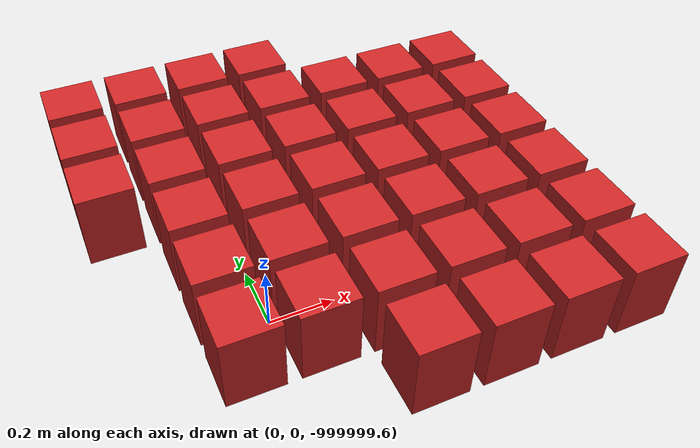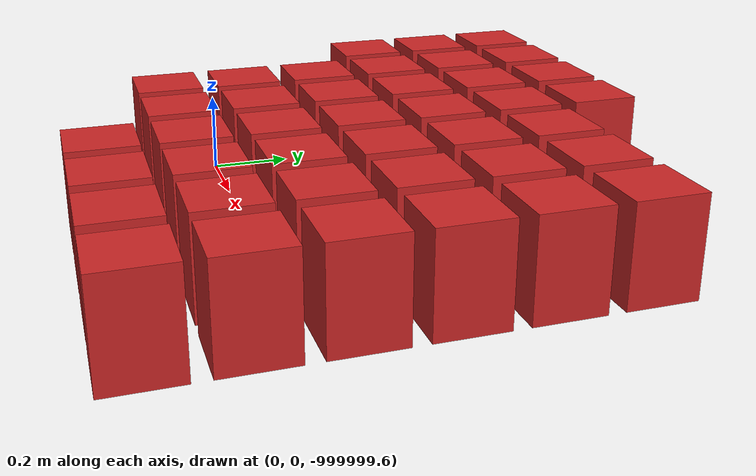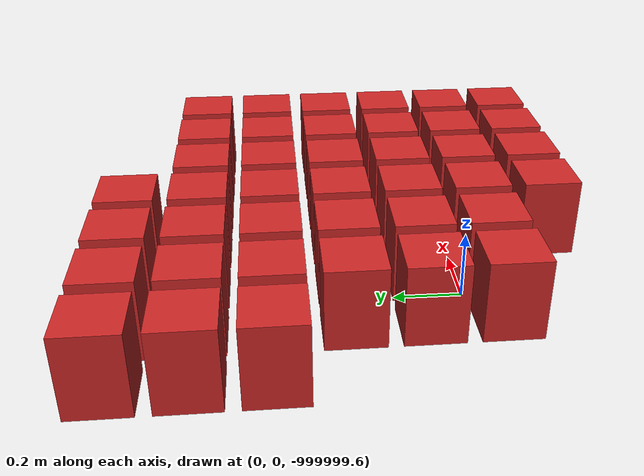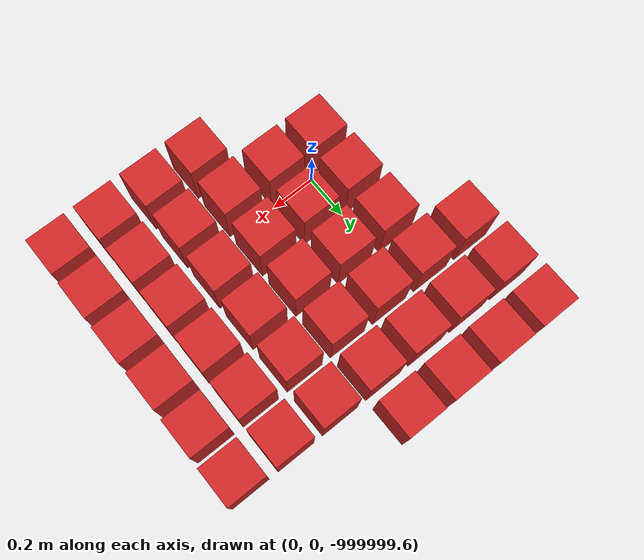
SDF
<sdf version="1.7">
 <world name="default">
  <model name="ground_plane">
   <static>1</static>
   <link name="link">
    <collision name="collision">
     <geometry><plane><normal>0 0 1</normal><size>100 100</size></plane></geometry>
     <surface>
      <contact><collide_bitmask>65535</collide_bitmask></contact>
      <friction><ode><mu>100</mu><mu2>50</mu2></ode></friction>
     </surface>
    </collision>
    <visual name="visual">
     <cast_shadows>0</cast_shadows>
     <geometry><plane><normal>0 0 1</normal><size>100 100</size></plane></geometry>
     <material>
      <script><uri>file://media/materials/scripts/gazebo.material</uri><name>Gazebo/Grey</name></script>
     </material>
    </visual>
   </link>
  </model>
  <model name="wall_243">
   <link name="link">
    <pose>0 0 0.5 0 -0 0</pose>
    <inertial>
     <mass>0.5167</mass>
     <inertia>
      <ixx>0.000861167</ixx>
      <ixy>0</ixy>
      <ixz>0</ixz>
      <iyy>0.000861167</iyy>
      <iyz>0</iyz>
      <izz>0.000861167</izz>
     </inertia>
    </inertial>
    <collision name="collision">
     <geometry><box><size>0.21 0.21 0.25</size></box></geometry>
     <surface>
      <contact>
       <poissons_ratio>0.347</poissons_ratio>
       <elastic_modulus>8.8e+09</elastic_modulus>
       <ode><kp>100000</kp><kd>100</kd><max_vel>100</max_vel><min_depth>0.001</min_depth></ode>
      </contact>
      <friction>
       <torsional>
        <coefficient>1</coefficient>
        <use_patch_radius>0</use_patch_radius>
        <surface_radius>0.01</surface_radius>
       </torsional>
      </friction>
     </surface>
    </collision>
    <visual name="visual">
     <geometry><box><size>0.175 0.175 0.25</size></box></geometry>
     <material>
      <script><uri>file://media/materials/scripts/gazebo.material</uri><name>Gazebo/Red</name></script>
     </material>
    </visual>
   </link>
   <pose>0.326087 -0.326087 -1e+06 0 -0 0</pose>
  </model>
  <model name="wall_244">
   <link name="link">
    <pose>0 0 0.5 0 -0 0</pose>
    <inertial>
     <mass>0.5167</mass>
     <inertia>
      <ixx>0.000861167</ixx>
      <ixy>0</ixy>
      <ixz>0</ixz>
      <iyy>0.000861167</iyy>
      <iyz>0</iyz>
      <izz>0.000861167</izz>
     </inertia>
    </inertial>
    <collision name="collision">
     <geometry><box><size>0.21 0.21 0.25</size></box></geometry>
     <surface>
      <contact>
       <poissons_ratio>0.347</poissons_ratio>
       <elastic_modulus>8.8e+09</elastic_modulus>
       <ode><kp>100000</kp><kd>100</kd><max_vel>100</max_vel><min_depth>0.001</min_depth></ode>
      </contact>
      <friction>
       <torsional>
        <coefficient>1</coefficient>
        <use_patch_radius>0</use_patch_radius>
        <surface_radius>0.01</surface_radius>
       </torsional>
      </friction>
     </surface>
    </collision>
    <visual name="visual">
     <geometry><box><size>0.175 0.175 0.25</size></box></geometry>
     <material>
      <script><uri>file://media/materials/scripts/gazebo.material</uri><name>Gazebo/Red</name></script>
     </material>
    </visual>
   </link>
   <pose>0.543478 -0.326087 -1e+06 0 -0 0</pose>
  </model>
  <model name="wall_245">
   <link name="link">
    <pose>0 0 0.5 0 -0 0</pose>
    <inertial>
     <mass>0.5167</mass>
     <inertia>
      <ixx>0.000861167</ixx>
      <ixy>0</ixy>
      <ixz>0</ixz>
      <iyy>0.000861167</iyy>
      <iyz>0</iyz>
      <izz>0.000861167</izz>
     </inertia>
    </inertial>
    <collision name="collision">
     <geometry><box><size>0.21 0.21 0.25</size></box></geometry>
     <surface>
      <contact>
       <poissons_ratio>0.347</poissons_ratio>
       <elastic_modulus>8.8e+09</elastic_modulus>
       <ode><kp>100000</kp><kd>100</kd><max_vel>100</max_vel><min_depth>0.001</min_depth></ode>
      </contact>
      <friction>
       <torsional>
        <coefficient>1</coefficient>
        <use_patch_radius>0</use_patch_radius>
        <surface_radius>0.01</surface_radius>
       </torsional>
      </friction>
     </surface>
    </collision>
    <visual name="visual">
     <geometry><box><size>0.175 0.175 0.25</size></box></geometry>
     <material>
      <script><uri>file://media/materials/scripts/gazebo.material</uri><name>Gazebo/Red</name></script>
     </material>
    </visual>
   </link>
   <pose>0.76087 -0.326087 -1e+06 0 -0 0</pose>
  </model>
  <model name="wall_246">
   <link name="link">
    <pose>0 0 0.5 0 -0 0</pose>
    <inertial>
     <mass>0.5167</mass>
     <inertia>
      <ixx>0.000861167</ixx>
      <ixy>0</ixy>
      <ixz>0</ixz>
      <iyy>0.000861167</iyy>
      <iyz>0</iyz>
      <izz>0.000861167</izz>
     </inertia>
    </inertial>
    <collision name="collision">
     <geometry><box><size>0.21 0.21 0.25</size></box></geometry>
     <surface>
      <contact>
       <poissons_ratio>0.347</poissons_ratio>
       <elastic_modulus>8.8e+09</elastic_modulus>
       <ode><kp>100000</kp><kd>100</kd><max_vel>100</max_vel><min_depth>0.001</min_depth></ode>
      </contact>
      <friction>
       <torsional>
        <coefficient>1</coefficient>
        <use_patch_radius>0</use_patch_radius>
        <surface_radius>0.01</surface_radius>
       </torsional>
      </friction>
     </surface>
    </collision>
    <visual name="visual">
     <geometry><box><size>0.175 0.175 0.25</size></box></geometry>
     <material>
      <script><uri>file://media/materials/scripts/gazebo.material</uri><name>Gazebo/Red</name></script>
     </material>
    </visual>
   </link>
   <pose>0.978261 -0.326087 -1e+06 0 -0 0</pose>
  </model>
  <model name="wall_264">
   <link name="link">
    <pose>0 0 0.5 0 -0 0</pose>
    <inertial>
     <mass>0.5167</mass>
     <inertia>
      <ixx>0.000861167</ixx>
      <ixy>0</ixy>
      <ixz>0</ixz>
      <iyy>0.000861167</iyy>
      <iyz>0</iyz>
      <izz>0.000861167</izz>
     </inertia>
    </inertial>
    <collision name="collision">
     <geometry><box><size>0.21 0.21 0.25</size></box></geometry>
     <surface>
      <contact>
       <poissons_ratio>0.347</poissons_ratio>
       <elastic_modulus>8.8e+09</elastic_modulus>
       <ode><kp>100000</kp><kd>100</kd><max_vel>100</max_vel><min_depth>0.001</min_depth></ode>
      </contact>
      <friction>
       <torsional>
        <coefficient>1</coefficient>
        <use_patch_radius>0</use_patch_radius>
        <surface_radius>0.01</surface_radius>
       </torsional>
      </friction>
     </surface>
    </collision>
    <visual name="visual">
     <geometry><box><size>0.175 0.175 0.25</size></box></geometry>
     <material>
      <script><uri>file://media/materials/scripts/gazebo.material</uri><name>Gazebo/Red</name></script>
     </material>
    </visual>
   </link>
   <pose>-0.108696 -0.108696 -1e+06 0 -0 0</pose>
  </model>
  <model name="wall_265">
   <link name="link">
    <pose>0 0 0.5 0 -0 0</pose>
    <inertial>
     <mass>0.5167</mass>
     <inertia>
      <ixx>0.000861167</ixx>
      <ixy>0</ixy>
      <ixz>0</ixz>
      <iyy>0.000861167</iyy>
      <iyz>0</iyz>
      <izz>0.000861167</izz>
     </inertia>
    </inertial>
    <collision name="collision">
     <geometry><box><size>0.21 0.21 0.25</size></box></geometry>
     <surface>
      <contact>
       <poissons_ratio>0.347</poissons_ratio>
       <elastic_modulus>8.8e+09</elastic_modulus>
       <ode><kp>100000</kp><kd>100</kd><max_vel>100</max_vel><min_depth>0.001</min_depth></ode>
      </contact>
      <friction>
       <torsional>
        <coefficient>1</coefficient>
        <use_patch_radius>0</use_patch_radius>
        <surface_radius>0.01</surface_radius>
       </torsional>
      </friction>
     </surface>
    </collision>
    <visual name="visual">
     <geometry><box><size>0.175 0.175 0.25</size></box></geometry>
     <material>
      <script><uri>file://media/materials/scripts/gazebo.material</uri><name>Gazebo/Red</name></script>
     </material>
    </visual>
   </link>
   <pose>0.108696 -0.108696 -1e+06 0 -0 0</pose>
  </model>
  <model name="wall_266">
   <link name="link">
    <pose>0 0 0.5 0 -0 0</pose>
    <inertial>
     <mass>0.5167</mass>
     <inertia>
      <ixx>0.000861167</ixx>
      <ixy>0</ixy>
      <ixz>0</ixz>
      <iyy>0.000861167</iyy>
      <iyz>0</iyz>
      <izz>0.000861167</izz>
     </inertia>
    </inertial>
    <collision name="collision">
     <geometry><box><size>0.21 0.21 0.25</size></box></geometry>
     <surface>
      <contact>
       <poissons_ratio>0.347</poissons_ratio>
       <elastic_modulus>8.8e+09</elastic_modulus>
       <ode><kp>100000</kp><kd>100</kd><max_vel>100</max_vel><min_depth>0.001</min_depth></ode>
      </contact>
      <friction>
       <torsional>
        <coefficient>1</coefficient>
        <use_patch_radius>0</use_patch_radius>
        <surface_radius>0.01</surface_radius>
       </torsional>
      </friction>
     </surface>
    </collision>
    <visual name="visual">
     <geometry><box><size>0.175 0.175 0.25</size></box></geometry>
     <material>
      <script><uri>file://media/materials/scripts/gazebo.material</uri><name>Gazebo/Red</name></script>
     </material>
    </visual>
   </link>
   <pose>0.326087 -0.108696 -1e+06 0 -0 0</pose>
  </model>
  <model name="wall_267">
   <link name="link">
    <pose>0 0 0.5 0 -0 0</pose>
    <inertial>
     <mass>0.5167</mass>
     <inertia>
      <ixx>0.000861167</ixx>
      <ixy>0</ixy>
      <ixz>0</ixz>
      <iyy>0.000861167</iyy>
      <iyz>0</iyz>
      <izz>0.000861167</izz>
     </inertia>
    </inertial>
    <collision name="collision">
     <geometry><box><size>0.21 0.21 0.25</size></box></geometry>
     <surface>
      <contact>
       <poissons_ratio>0.347</poissons_ratio>
       <elastic_modulus>8.8e+09</elastic_modulus>
       <ode><kp>100000</kp><kd>100</kd><max_vel>100</max_vel><min_depth>0.001</min_depth></ode>
      </contact>
      <friction>
       <torsional>
        <coefficient>1</coefficient>
        <use_patch_radius>0</use_patch_radius>
        <surface_radius>0.01</surface_radius>
       </torsional>
      </friction>
     </surface>
    </collision>
    <visual name="visual">
     <geometry><box><size>0.175 0.175 0.25</size></box></geometry>
     <material>
      <script><uri>file://media/materials/scripts/gazebo.material</uri><name>Gazebo/Red</name></script>
     </material>
    </visual>
   </link>
   <pose>0.543478 -0.108696 -1e+06 0 -0 0</pose>
  </model>
  <model name="wall_268">
   <link name="link">
    <pose>0 0 0.5 0 -0 0</pose>
    <inertial>
     <mass>0.5167</mass>
     <inertia>
      <ixx>0.000861167</ixx>
      <ixy>0</ixy>
      <ixz>0</ixz>
      <iyy>0.000861167</iyy>
      <iyz>0</iyz>
      <izz>0.000861167</izz>
     </inertia>
    </inertial>
    <collision name="collision">
     <geometry><box><size>0.21 0.21 0.25</size></box></geometry>
     <surface>
      <contact>
       <poissons_ratio>0.347</poissons_ratio>
       <elastic_modulus>8.8e+09</elastic_modulus>
       <ode><kp>100000</kp><kd>100</kd><max_vel>100</max_vel><min_depth>0.001</min_depth></ode>
      </contact>
      <friction>
       <torsional>
        <coefficient>1</coefficient>
        <use_patch_radius>0</use_patch_radius>
        <surface_radius>0.01</surface_radius>
       </torsional>
      </friction>
     </surface>
    </collision>
    <visual name="visual">
     <geometry><box><size>0.175 0.175 0.25</size></box></geometry>
     <material>
      <script><uri>file://media/materials/scripts/gazebo.material</uri><name>Gazebo/Red</name></script>
     </material>
    </visual>
   </link>
   <pose>0.76087 -0.108696 -1e+06 0 -0 0</pose>
  </model>
  <model name="wall_269">
   <link name="link">
    <pose>0 0 0.5 0 -0 0</pose>
    <inertial>
     <mass>0.5167</mass>
     <inertia>
      <ixx>0.000861167</ixx>
      <ixy>0</ixy>
      <ixz>0</ixz>
      <iyy>0.000861167</iyy>
      <iyz>0</iyz>
      <izz>0.000861167</izz>
     </inertia>
    </inertial>
    <collision name="collision">
     <geometry><box><size>0.21 0.21 0.25</size></box></geometry>
     <surface>
      <contact>
       <poissons_ratio>0.347</poissons_ratio>
       <elastic_modulus>8.8e+09</elastic_modulus>
       <ode><kp>100000</kp><kd>100</kd><max_vel>100</max_vel><min_depth>0.001</min_depth></ode>
      </contact>
      <friction>
       <torsional>
        <coefficient>1</coefficient>
        <use_patch_radius>0</use_patch_radius>
        <surface_radius>0.01</surface_radius>
       </torsional>
      </friction>
     </surface>
    </collision>
    <visual name="visual">
     <geometry><box><size>0.175 0.175 0.25</size></box></geometry>
     <material>
      <script><uri>file://media/materials/scripts/gazebo.material</uri><name>Gazebo/Red</name></script>
     </material>
    </visual>
   </link>
   <pose>0.978261 -0.108696 -1e+06 0 -0 0</pose>
  </model>
  <model name="wall_287">
   <link name="link">
    <pose>0 0 0.5 0 -0 0</pose>
    <inertial>
     <mass>0.5167</mass>
     <inertia>
      <ixx>0.000861167</ixx>
      <ixy>0</ixy>
      <ixz>0</ixz>
      <iyy>0.000861167</iyy>
      <iyz>0</iyz>
      <izz>0.000861167</izz>
     </inertia>
    </inertial>
    <collision name="collision">
     <geometry><box><size>0.21 0.21 0.25</size></box></geometry>
     <surface>
      <contact>
       <poissons_ratio>0.347</poissons_ratio>
       <elastic_modulus>8.8e+09</elastic_modulus>
       <ode><kp>100000</kp><kd>100</kd><max_vel>100</max_vel><min_depth>0.001</min_depth></ode>
      </contact>
      <friction>
       <torsional>
        <coefficient>1</coefficient>
        <use_patch_radius>0</use_patch_radius>
        <surface_radius>0.01</surface_radius>
       </torsional>
      </friction>
     </surface>
    </collision>
    <visual name="visual">
     <geometry><box><size>0.175 0.175 0.25</size></box></geometry>
     <material>
      <script><uri>file://media/materials/scripts/gazebo.material</uri><name>Gazebo/Red</name></script>
     </material>
    </visual>
   </link>
   <pose>-0.108696 0.108696 -1e+06 0 -0 0</pose>
  </model>
  <model name="wall_288">
   <link name="link">
    <pose>0 0 0.5 0 -0 0</pose>
    <inertial>
     <mass>0.5167</mass>
     <inertia>
      <ixx>0.000861167</ixx>
      <ixy>0</ixy>
      <ixz>0</ixz>
      <iyy>0.000861167</iyy>
      <iyz>0</iyz>
      <izz>0.000861167</izz>
     </inertia>
    </inertial>
    <collision name="collision">
     <geometry><box><size>0.21 0.21 0.25</size></box></geometry>
     <surface>
      <contact>
       <poissons_ratio>0.347</poissons_ratio>
       <elastic_modulus>8.8e+09</elastic_modulus>
       <ode><kp>100000</kp><kd>100</kd><max_vel>100</max_vel><min_depth>0.001</min_depth></ode>
      </contact>
      <friction>
       <torsional>
        <coefficient>1</coefficient>
        <use_patch_radius>0</use_patch_radius>
        <surface_radius>0.01</surface_radius>
       </torsional>
      </friction>
     </surface>
    </collision>
    <visual name="visual">
     <geometry><box><size>0.175 0.175 0.25</size></box></geometry>
     <material>
      <script><uri>file://media/materials/scripts/gazebo.material</uri><name>Gazebo/Red</name></script>
     </material>
    </visual>
   </link>
   <pose>0.108696 0.108696 -1e+06 0 -0 0</pose>
  </model>
  <model name="wall_289">
   <link name="link">
    <pose>0 0 0.5 0 -0 0</pose>
    <inertial>
     <mass>0.5167</mass>
     <inertia>
      <ixx>0.000861167</ixx>
      <ixy>0</ixy>
      <ixz>0</ixz>
      <iyy>0.000861167</iyy>
      <iyz>0</iyz>
      <izz>0.000861167</izz>
     </inertia>
    </inertial>
    <collision name="collision">
     <geometry><box><size>0.21 0.21 0.25</size></box></geometry>
     <surface>
      <contact>
       <poissons_ratio>0.347</poissons_ratio>
       <elastic_modulus>8.8e+09</elastic_modulus>
       <ode><kp>100000</kp><kd>100</kd><max_vel>100</max_vel><min_depth>0.001</min_depth></ode>
      </contact>
      <friction>
       <torsional>
        <coefficient>1</coefficient>
        <use_patch_radius>0</use_patch_radius>
        <surface_radius>0.01</surface_radius>
       </torsional>
      </friction>
     </surface>
    </collision>
    <visual name="visual">
     <geometry><box><size>0.175 0.175 0.25</size></box></geometry>
     <material>
      <script><uri>file://media/materials/scripts/gazebo.material</uri><name>Gazebo/Red</name></script>
     </material>
    </visual>
   </link>
   <pose>0.326087 0.108696 -1e+06 0 -0 0</pose>
  </model>
  <model name="wall_290">
   <link name="link">
    <pose>0 0 0.5 0 -0 0</pose>
    <inertial>
     <mass>0.5167</mass>
     <inertia>
      <ixx>0.000861167</ixx>
      <ixy>0</ixy>
      <ixz>0</ixz>
      <iyy>0.000861167</iyy>
      <iyz>0</iyz>
      <izz>0.000861167</izz>
     </inertia>
    </inertial>
    <collision name="collision">
     <geometry><box><size>0.21 0.21 0.25</size></box></geometry>
     <surface>
      <contact>
       <poissons_ratio>0.347</poissons_ratio>
       <elastic_modulus>8.8e+09</elastic_modulus>
       <ode><kp>100000</kp><kd>100</kd><max_vel>100</max_vel><min_depth>0.001</min_depth></ode>
      </contact>
      <friction>
       <torsional>
        <coefficient>1</coefficient>
        <use_patch_radius>0</use_patch_radius>
        <surface_radius>0.01</surface_radius>
       </torsional>
      </friction>
     </surface>
    </collision>
    <visual name="visual">
     <geometry><box><size>0.175 0.175 0.25</size></box></geometry>
     <material>
      <script><uri>file://media/materials/scripts/gazebo.material</uri><name>Gazebo/Red</name></script>
     </material>
    </visual>
   </link>
   <pose>0.543478 0.108696 -1e+06 0 -0 0</pose>
  </model>
  <model name="wall_291">
   <link name="link">
    <pose>0 0 0.5 0 -0 0</pose>
    <inertial>
     <mass>0.5167</mass>
     <inertia>
      <ixx>0.000861167</ixx>
      <ixy>0</ixy>
      <ixz>0</ixz>
      <iyy>0.000861167</iyy>
      <iyz>0</iyz>
      <izz>0.000861167</izz>
     </inertia>
    </inertial>
    <collision name="collision">
     <geometry><box><size>0.21 0.21 0.25</size></box></geometry>
     <surface>
      <contact>
       <poissons_ratio>0.347</poissons_ratio>
       <elastic_modulus>8.8e+09</elastic_modulus>
       <ode><kp>100000</kp><kd>100</kd><max_vel>100</max_vel><min_depth>0.001</min_depth></ode>
      </contact>
      <friction>
       <torsional>
        <coefficient>1</coefficient>
        <use_patch_radius>0</use_patch_radius>
        <surface_radius>0.01</surface_radius>
       </torsional>
      </friction>
     </surface>
    </collision>
    <visual name="visual">
     <geometry><box><size>0.175 0.175 0.25</size></box></geometry>
     <material>
      <script><uri>file://media/materials/scripts/gazebo.material</uri><name>Gazebo/Red</name></script>
     </material>
    </visual>
   </link>
   <pose>0.76087 0.108696 -1e+06 0 -0 0</pose>
  </model>
  <model name="wall_292">
   <link name="link">
    <pose>0 0 0.5 0 -0 0</pose>
    <inertial>
     <mass>0.5167</mass>
     <inertia>
      <ixx>0.000861167</ixx>
      <ixy>0</ixy>
      <ixz>0</ixz>
      <iyy>0.000861167</iyy>
      <iyz>0</iyz>
      <izz>0.000861167</izz>
     </inertia>
    </inertial>
    <collision name="collision">
     <geometry><box><size>0.21 0.21 0.25</size></box></geometry>
     <surface>
      <contact>
       <poissons_ratio>0.347</poissons_ratio>
       <elastic_modulus>8.8e+09</elastic_modulus>
       <ode><kp>100000</kp><kd>100</kd><max_vel>100</max_vel><min_depth>0.001</min_depth></ode>
      </contact>
      <friction>
       <torsional>
        <coefficient>1</coefficient>
        <use_patch_radius>0</use_patch_radius>
        <surface_radius>0.01</surface_radius>
       </torsional>
      </friction>
     </surface>
    </collision>
    <visual name="visual">
     <geometry><box><size>0.175 0.175 0.25</size></box></geometry>
     <material>
      <script><uri>file://media/materials/scripts/gazebo.material</uri><name>Gazebo/Red</name></script>
     </material>
    </visual>
   </link>
   <pose>0.978261 0.108696 -1e+06 0 -0 0</pose>
  </model>
  <model name="wall_310">
   <link name="link">
    <pose>0 0 0.5 0 -0 0</pose>
    <inertial>
     <mass>0.5167</mass>
     <inertia>
      <ixx>0.000861167</ixx>
      <ixy>0</ixy>
      <ixz>0</ixz>
      <iyy>0.000861167</iyy>
      <iyz>0</iyz>
      <izz>0.000861167</izz>
     </inertia>
    </inertial>
    <collision name="collision">
     <geometry><box><size>0.21 0.21 0.25</size></box></geometry>
     <surface>
      <contact>
       <poissons_ratio>0.347</poissons_ratio>
       <elastic_modulus>8.8e+09</elastic_modulus>
       <ode><kp>100000</kp><kd>100</kd><max_vel>100</max_vel><min_depth>0.001</min_depth></ode>
      </contact>
      <friction>
       <torsional>
        <coefficient>1</coefficient>
        <use_patch_radius>0</use_patch_radius>
        <surface_radius>0.01</surface_radius>
       </torsional>
      </friction>
     </surface>
    </collision>
    <visual name="visual">
     <geometry><box><size>0.175 0.175 0.25</size></box></geometry>
     <material>
      <script><uri>file://media/materials/scripts/gazebo.material</uri><name>Gazebo/Red</name></script>
     </material>
    </visual>
   </link>
   <pose>-0.108696 0.326087 -1e+06 0 -0 0</pose>
  </model>
  <model name="wall_311">
   <link name="link">
    <pose>0 0 0.5 0 -0 0</pose>
    <inertial>
     <mass>0.5167</mass>
     <inertia>
      <ixx>0.000861167</ixx>
      <ixy>0</ixy>
      <ixz>0</ixz>
      <iyy>0.000861167</iyy>
      <iyz>0</iyz>
      <izz>0.000861167</izz>
     </inertia>
    </inertial>
    <collision name="collision">
     <geometry><box><size>0.21 0.21 0.25</size></box></geometry>
     <surface>
      <contact>
       <poissons_ratio>0.347</poissons_ratio>
       <elastic_modulus>8.8e+09</elastic_modulus>
       <ode><kp>100000</kp><kd>100</kd><max_vel>100</max_vel><min_depth>0.001</min_depth></ode>
      </contact>
      <friction>
       <torsional>
        <coefficient>1</coefficient>
        <use_patch_radius>0</use_patch_radius>
        <surface_radius>0.01</surface_radius>
       </torsional>
      </friction>
     </surface>
    </collision>
    <visual name="visual">
     <geometry><box><size>0.175 0.175 0.25</size></box></geometry>
     <material>
      <script><uri>file://media/materials/scripts/gazebo.material</uri><name>Gazebo/Red</name></script>
     </material>
    </visual>
   </link>
   <pose>0.108696 0.326087 -1e+06 0 -0 0</pose>
  </model>
  <model name="wall_312">
   <link name="link">
    <pose>0 0 0.5 0 -0 0</pose>
    <inertial>
     <mass>0.5167</mass>
     <inertia>
      <ixx>0.000861167</ixx>
      <ixy>0</ixy>
      <ixz>0</ixz>
      <iyy>0.000861167</iyy>
      <iyz>0</iyz>
      <izz>0.000861167</izz>
     </inertia>
    </inertial>
    <collision name="collision">
     <geometry><box><size>0.21 0.21 0.25</size></box></geometry>
     <surface>
      <contact>
       <poissons_ratio>0.347</poissons_ratio>
       <elastic_modulus>8.8e+09</elastic_modulus>
       <ode><kp>100000</kp><kd>100</kd><max_vel>100</max_vel><min_depth>0.001</min_depth></ode>
      </contact>
      <friction>
       <torsional>
        <coefficient>1</coefficient>
        <use_patch_radius>0</use_patch_radius>
        <surface_radius>0.01</surface_radius>
       </torsional>
      </friction>
     </surface>
    </collision>
    <visual name="visual">
     <geometry><box><size>0.175 0.175 0.25</size></box></geometry>
     <material>
      <script><uri>file://media/materials/scripts/gazebo.material</uri><name>Gazebo/Red</name></script>
     </material>
    </visual>
   </link>
   <pose>0.326087 0.326087 -1e+06 0 -0 0</pose>
  </model>
  <model name="wall_313">
   <link name="link">
    <pose>0 0 0.5 0 -0 0</pose>
    <inertial>
     <mass>0.5167</mass>
     <inertia>
      <ixx>0.000861167</ixx>
      <ixy>0</ixy>
      <ixz>0</ixz>
      <iyy>0.000861167</iyy>
      <iyz>0</iyz>
      <izz>0.000861167</izz>
     </inertia>
    </inertial>
    <collision name="collision">
     <geometry><box><size>0.21 0.21 0.25</size></box></geometry>
     <surface>
      <contact>
       <poissons_ratio>0.347</poissons_ratio>
       <elastic_modulus>8.8e+09</elastic_modulus>
       <ode><kp>100000</kp><kd>100</kd><max_vel>100</max_vel><min_depth>0.001</min_depth></ode>
      </contact>
      <friction>
       <torsional>
        <coefficient>1</coefficient>
        <use_patch_radius>0</use_patch_radius>
        <surface_radius>0.01</surface_radius>
       </torsional>
      </friction>
     </surface>
    </collision>
    <visual name="visual">
     <geometry><box><size>0.175 0.175 0.25</size></box></geometry>
     <material>
      <script><uri>file://media/materials/scripts/gazebo.material</uri><name>Gazebo/Red</name></script>
     </material>
    </visual>
   </link>
   <pose>0.543478 0.326087 -1e+06 0 -0 0</pose>
  </model>
  <model name="wall_314">
   <link name="link">
    <pose>0 0 0.5 0 -0 0</pose>
    <inertial>
     <mass>0.5167</mass>
     <inertia>
      <ixx>0.000861167</ixx>
      <ixy>0</ixy>
      <ixz>0</ixz>
      <iyy>0.000861167</iyy>
      <iyz>0</iyz>
      <izz>0.000861167</izz>
     </inertia>
    </inertial>
    <collision name="collision">
     <geometry><box><size>0.21 0.21 0.25</size></box></geometry>
     <surface>
      <contact>
       <poissons_ratio>0.347</poissons_ratio>
       <elastic_modulus>8.8e+09</elastic_modulus>
       <ode><kp>100000</kp><kd>100</kd><max_vel>100</max_vel><min_depth>0.001</min_depth></ode>
      </contact>
      <friction>
       <torsional>
        <coefficient>1</coefficient>
        <use_patch_radius>0</use_patch_radius>
        <surface_radius>0.01</surface_radius>
       </torsional>
      </friction>
     </surface>
    </collision>
    <visual name="visual">
     <geometry><box><size>0.175 0.175 0.25</size></box></geometry>
     <material>
      <script><uri>file://media/materials/scripts/gazebo.material</uri><name>Gazebo/Red</name></script>
     </material>
    </visual>
   </link>
   <pose>0.76087 0.326087 -1e+06 0 -0 0</pose>
  </model>
  <model name="wall_315">
   <link name="link">
    <pose>0 0 0.5 0 -0 0</pose>
    <inertial>
     <mass>0.5167</mass>
     <inertia>
      <ixx>0.000861167</ixx>
      <ixy>0</ixy>
      <ixz>0</ixz>
      <iyy>0.000861167</iyy>
      <iyz>0</iyz>
      <izz>0.000861167</izz>
     </inertia>
    </inertial>
    <collision name="collision">
     <geometry><box><size>0.21 0.21 0.25</size></box></geometry>
     <surface>
      <contact>
       <poissons_ratio>0.347</poissons_ratio>
       <elastic_modulus>8.8e+09</elastic_modulus>
       <ode><kp>100000</kp><kd>100</kd><max_vel>100</max_vel><min_depth>0.001</min_depth></ode>
      </contact>
      <friction>
       <torsional>
        <coefficient>1</coefficient>
        <use_patch_radius>0</use_patch_radius>
        <surface_radius>0.01</surface_radius>
       </torsional>
      </friction>
     </surface>
    </collision>
    <visual name="visual">
     <geometry><box><size>0.175 0.175 0.25</size></box></geometry>
     <material>
      <script><uri>file://media/materials/scripts/gazebo.material</uri><name>Gazebo/Red</name></script>
     </material>
    </visual>
   </link>
   <pose>0.978261 0.326087 -1e+06 0 -0 0</pose>
  </model>
  <model name="wall_332">
   <link name="link">
    <pose>0 0 0.5 0 -0 0</pose>
    <inertial>
     <mass>0.5167</mass>
     <inertia>
      <ixx>0.000861167</ixx>
      <ixy>0</ixy>
      <ixz>0</ixz>
      <iyy>0.000861167</iyy>
      <iyz>0</iyz>
      <izz>0.000861167</izz>
     </inertia>
    </inertial>
    <collision name="collision">
     <geometry><box><size>0.21 0.21 0.25</size></box></geometry>
     <surface>
      <contact>
       <poissons_ratio>0.347</poissons_ratio>
       <elastic_modulus>8.8e+09</elastic_modulus>
       <ode><kp>100000</kp><kd>100</kd><max_vel>100</max_vel><min_depth>0.001</min_depth></ode>
      </contact>
      <friction>
       <torsional>
        <coefficient>1</coefficient>
        <use_patch_radius>0</use_patch_radius>
        <surface_radius>0.01</surface_radius>
       </torsional>
      </friction>
     </surface>
    </collision>
    <visual name="visual">
     <geometry><box><size>0.175 0.175 0.25</size></box></geometry>
     <material>
      <script><uri>file://media/materials/scripts/gazebo.material</uri><name>Gazebo/Red</name></script>
     </material>
    </visual>
   </link>
   <pose>-0.326087 0.543478 -1e+06 0 -0 0</pose>
  </model>
  <model name="wall_333">
   <link name="link">
    <pose>0 0 0.5 0 -0 0</pose>
    <inertial>
     <mass>0.5167</mass>
     <inertia>
      <ixx>0.000861167</ixx>
      <ixy>0</ixy>
      <ixz>0</ixz>
      <iyy>0.000861167</iyy>
      <iyz>0</iyz>
      <izz>0.000861167</izz>
     </inertia>
    </inertial>
    <collision name="collision">
     <geometry><box><size>0.21 0.21 0.25</size></box></geometry>
     <surface>
      <contact>
       <poissons_ratio>0.347</poissons_ratio>
       <elastic_modulus>8.8e+09</elastic_modulus>
       <ode><kp>100000</kp><kd>100</kd><max_vel>100</max_vel><min_depth>0.001</min_depth></ode>
      </contact>
      <friction>
       <torsional>
        <coefficient>1</coefficient>
        <use_patch_radius>0</use_patch_radius>
        <surface_radius>0.01</surface_radius>
       </torsional>
      </friction>
     </surface>
    </collision>
    <visual name="visual">
     <geometry><box><size>0.175 0.175 0.25</size></box></geometry>
     <material>
      <script><uri>file://media/materials/scripts/gazebo.material</uri><name>Gazebo/Red</name></script>
     </material>
    </visual>
   </link>
   <pose>-0.108696 0.543478 -1e+06 0 -0 0</pose>
  </model>
  <model name="wall_334">
   <link name="link">
    <pose>0 0 0.5 0 -0 0</pose>
    <inertial>
     <mass>0.5167</mass>
     <inertia>
      <ixx>0.000861167</ixx>
      <ixy>0</ixy>
      <ixz>0</ixz>
      <iyy>0.000861167</iyy>
      <iyz>0</iyz>
      <izz>0.000861167</izz>
     </inertia>
    </inertial>
    <collision name="collision">
     <geometry><box><size>0.21 0.21 0.25</size></box></geometry>
     <surface>
      <contact>
       <poissons_ratio>0.347</poissons_ratio>
       <elastic_modulus>8.8e+09</elastic_modulus>
       <ode><kp>100000</kp><kd>100</kd><max_vel>100</max_vel><min_depth>0.001</min_depth></ode>
      </contact>
      <friction>
       <torsional>
        <coefficient>1</coefficient>
        <use_patch_radius>0</use_patch_radius>
        <surface_radius>0.01</surface_radius>
       </torsional>
      </friction>
     </surface>
    </collision>
    <visual name="visual">
     <geometry><box><size>0.175 0.175 0.25</size></box></geometry>
     <material>
      <script><uri>file://media/materials/scripts/gazebo.material</uri><name>Gazebo/Red</name></script>
     </material>
    </visual>
   </link>
   <pose>0.108696 0.543478 -1e+06 0 -0 0</pose>
  </model>
  <model name="wall_335">
   <link name="link">
    <pose>0 0 0.5 0 -0 0</pose>
    <inertial>
     <mass>0.5167</mass>
     <inertia>
      <ixx>0.000861167</ixx>
      <ixy>0</ixy>
      <ixz>0</ixz>
      <iyy>0.000861167</iyy>
      <iyz>0</iyz>
      <izz>0.000861167</izz>
     </inertia>
    </inertial>
    <collision name="collision">
     <geometry><box><size>0.21 0.21 0.25</size></box></geometry>
     <surface>
      <contact>
       <poissons_ratio>0.347</poissons_ratio>
       <elastic_modulus>8.8e+09</elastic_modulus>
       <ode><kp>100000</kp><kd>100</kd><max_vel>100</max_vel><min_depth>0.001</min_depth></ode>
      </contact>
      <friction>
       <torsional>
        <coefficient>1</coefficient>
        <use_patch_radius>0</use_patch_radius>
        <surface_radius>0.01</surface_radius>
       </torsional>
      </friction>
     </surface>
    </collision>
    <visual name="visual">
     <geometry><box><size>0.175 0.175 0.25</size></box></geometry>
     <material>
      <script><uri>file://media/materials/scripts/gazebo.material</uri><name>Gazebo/Red</name></script>
     </material>
    </visual>
   </link>
   <pose>0.326087 0.543478 -1e+06 0 -0 0</pose>
  </model>
  <model name="wall_336">
   <link name="link">
    <pose>0 0 0.5 0 -0 0</pose>
    <inertial>
     <mass>0.5167</mass>
     <inertia>
      <ixx>0.000861167</ixx>
      <ixy>0</ixy>
      <ixz>0</ixz>
      <iyy>0.000861167</iyy>
      <iyz>0</iyz>
      <izz>0.000861167</izz>
     </inertia>
    </inertial>
    <collision name="collision">
     <geometry><box><size>0.21 0.21 0.25</size></box></geometry>
     <surface>
      <contact>
       <poissons_ratio>0.347</poissons_ratio>
       <elastic_modulus>8.8e+09</elastic_modulus>
       <ode><kp>100000</kp><kd>100</kd><max_vel>100</max_vel><min_depth>0.001</min_depth></ode>
      </contact>
      <friction>
       <torsional>
        <coefficient>1</coefficient>
        <use_patch_radius>0</use_patch_radius>
        <surface_radius>0.01</surface_radius>
       </torsional>
      </friction>
     </surface>
    </collision>
    <visual name="visual">
     <geometry><box><size>0.175 0.175 0.25</size></box></geometry>
     <material>
      <script><uri>file://media/materials/scripts/gazebo.material</uri><name>Gazebo/Red</name></script>
     </material>
    </visual>
   </link>
   <pose>0.543478 0.543478 -1e+06 0 -0 0</pose>
  </model>
  <model name="wall_337">
   <link name="link">
    <pose>0 0 0.5 0 -0 0</pose>
    <inertial>
     <mass>0.5167</mass>
     <inertia>
      <ixx>0.000861167</ixx>
      <ixy>0</ixy>
      <ixz>0</ixz>
      <iyy>0.000861167</iyy>
      <iyz>0</iyz>
      <izz>0.000861167</izz>
     </inertia>
    </inertial>
    <collision name="collision">
     <geometry><box><size>0.21 0.21 0.25</size></box></geometry>
     <surface>
      <contact>
       <poissons_ratio>0.347</poissons_ratio>
       <elastic_modulus>8.8e+09</elastic_modulus>
       <ode><kp>100000</kp><kd>100</kd><max_vel>100</max_vel><min_depth>0.001</min_depth></ode>
      </contact>
      <friction>
       <torsional>
        <coefficient>1</coefficient>
        <use_patch_radius>0</use_patch_radius>
        <surface_radius>0.01</surface_radius>
       </torsional>
      </friction>
     </surface>
    </collision>
    <visual name="visual">
     <geometry><box><size>0.175 0.175 0.25</size></box></geometry>
     <material>
      <script><uri>file://media/materials/scripts/gazebo.material</uri><name>Gazebo/Red</name></script>
     </material>
    </visual>
   </link>
   <pose>0.76087 0.543478 -1e+06 0 -0 0</pose>
  </model>
  <model name="wall_338">
   <link name="link">
    <pose>0 0 0.5 0 -0 0</pose>
    <inertial>
     <mass>0.5167</mass>
     <inertia>
      <ixx>0.000861167</ixx>
      <ixy>0</ixy>
      <ixz>0</ixz>
      <iyy>0.000861167</iyy>
      <iyz>0</iyz>
      <izz>0.000861167</izz>
     </inertia>
    </inertial>
    <collision name="collision">
     <geometry><box><size>0.21 0.21 0.25</size></box></geometry>
     <surface>
      <contact>
       <poissons_ratio>0.347</poissons_ratio>
       <elastic_modulus>8.8e+09</elastic_modulus>
       <ode><kp>100000</kp><kd>100</kd><max_vel>100</max_vel><min_depth>0.001</min_depth></ode>
      </contact>
      <friction>
       <torsional>
        <coefficient>1</coefficient>
        <use_patch_radius>0</use_patch_radius>
        <surface_radius>0.01</surface_radius>
       </torsional>
      </friction>
     </surface>
    </collision>
    <visual name="visual">
     <geometry><box><size>0.175 0.175 0.25</size></box></geometry>
     <material>
      <script><uri>file://media/materials/scripts/gazebo.material</uri><name>Gazebo/Red</name></script>
     </material>
    </visual>
   </link>
   <pose>0.978261 0.543478 -1e+06 0 -0 0</pose>
  </model>
  <model name="wall_355">
   <link name="link">
    <pose>0 0 0.5 0 -0 0</pose>
    <inertial>
     <mass>0.5167</mass>
     <inertia>
      <ixx>0.000861167</ixx>
      <ixy>0</ixy>
      <ixz>0</ixz>
      <iyy>0.000861167</iyy>
      <iyz>0</iyz>
      <izz>0.000861167</izz>
     </inertia>
    </inertial>
    <collision name="collision">
     <geometry><box><size>0.21 0.21 0.25</size></box></geometry>
     <surface>
      <contact>
       <poissons_ratio>0.347</poissons_ratio>
       <elastic_modulus>8.8e+09</elastic_modulus>
       <ode><kp>100000</kp><kd>100</kd><max_vel>100</max_vel><min_depth>0.001</min_depth></ode>
      </contact>
      <friction>
       <torsional>
        <coefficient>1</coefficient>
        <use_patch_radius>0</use_patch_radius>
        <surface_radius>0.01</surface_radius>
       </torsional>
      </friction>
     </surface>
    </collision>
    <visual name="visual">
     <geometry><box><size>0.175 0.175 0.25</size></box></geometry>
     <material>
      <script><uri>file://media/materials/scripts/gazebo.material</uri><name>Gazebo/Red</name></script>
     </material>
    </visual>
   </link>
   <pose>-0.326087 0.76087 -1e+06 0 -0 0</pose>
  </model>
  <model name="wall_356">
   <link name="link">
    <pose>0 0 0.5 0 -0 0</pose>
    <inertial>
     <mass>0.5167</mass>
     <inertia>
      <ixx>0.000861167</ixx>
      <ixy>0</ixy>
      <ixz>0</ixz>
      <iyy>0.000861167</iyy>
      <iyz>0</iyz>
      <izz>0.000861167</izz>
     </inertia>
    </inertial>
    <collision name="collision">
     <geometry><box><size>0.21 0.21 0.25</size></box></geometry>
     <surface>
      <contact>
       <poissons_ratio>0.347</poissons_ratio>
       <elastic_modulus>8.8e+09</elastic_modulus>
       <ode><kp>100000</kp><kd>100</kd><max_vel>100</max_vel><min_depth>0.001</min_depth></ode>
      </contact>
      <friction>
       <torsional>
        <coefficient>1</coefficient>
        <use_patch_radius>0</use_patch_radius>
        <surface_radius>0.01</surface_radius>
       </torsional>
      </friction>
     </surface>
    </collision>
    <visual name="visual">
     <geometry><box><size>0.175 0.175 0.25</size></box></geometry>
     <material>
      <script><uri>file://media/materials/scripts/gazebo.material</uri><name>Gazebo/Red</name></script>
     </material>
    </visual>
   </link>
   <pose>-0.108696 0.76087 -1e+06 0 -0 0</pose>
  </model>
  <model name="wall_357">
   <link name="link">
    <pose>0 0 0.5 0 -0 0</pose>
    <inertial>
     <mass>0.5167</mass>
     <inertia>
      <ixx>0.000861167</ixx>
      <ixy>0</ixy>
      <ixz>0</ixz>
      <iyy>0.000861167</iyy>
      <iyz>0</iyz>
      <izz>0.000861167</izz>
     </inertia>
    </inertial>
    <collision name="collision">
     <geometry><box><size>0.21 0.21 0.25</size></box></geometry>
     <surface>
      <contact>
       <poissons_ratio>0.347</poissons_ratio>
       <elastic_modulus>8.8e+09</elastic_modulus>
       <ode><kp>100000</kp><kd>100</kd><max_vel>100</max_vel><min_depth>0.001</min_depth></ode>
      </contact>
      <friction>
       <torsional>
        <coefficient>1</coefficient>
        <use_patch_radius>0</use_patch_radius>
        <surface_radius>0.01</surface_radius>
       </torsional>
      </friction>
     </surface>
    </collision>
    <visual name="visual">
     <geometry><box><size>0.175 0.175 0.25</size></box></geometry>
     <material>
      <script><uri>file://media/materials/scripts/gazebo.material</uri><name>Gazebo/Red</name></script>
     </material>
    </visual>
   </link>
   <pose>0.108696 0.76087 -1e+06 0 -0 0</pose>
  </model>
  <model name="wall_358">
   <link name="link">
    <pose>0 0 0.5 0 -0 0</pose>
    <inertial>
     <mass>0.5167</mass>
     <inertia>
      <ixx>0.000861167</ixx>
      <ixy>0</ixy>
      <ixz>0</ixz>
      <iyy>0.000861167</iyy>
      <iyz>0</iyz>
      <izz>0.000861167</izz>
     </inertia>
    </inertial>
    <collision name="collision">
     <geometry><box><size>0.21 0.21 0.25</size></box></geometry>
     <surface>
      <contact>
       <poissons_ratio>0.347</poissons_ratio>
       <elastic_modulus>8.8e+09</elastic_modulus>
       <ode><kp>100000</kp><kd>100</kd><max_vel>100</max_vel><min_depth>0.001</min_depth></ode>
      </contact>
      <friction>
       <torsional>
        <coefficient>1</coefficient>
        <use_patch_radius>0</use_patch_radius>
        <surface_radius>0.01</surface_radius>
       </torsional>
      </friction>
     </surface>
    </collision>
    <visual name="visual">
     <geometry><box><size>0.175 0.175 0.25</size></box></geometry>
     <material>
      <script><uri>file://media/materials/scripts/gazebo.material</uri><name>Gazebo/Red</name></script>
     </material>
    </visual>
   </link>
   <pose>0.326087 0.76087 -1e+06 0 -0 0</pose>
  </model>
  <model name="wall_359">
   <link name="link">
    <pose>0 0 0.5 0 -0 0</pose>
    <inertial>
     <mass>0.5167</mass>
     <inertia>
      <ixx>0.000861167</ixx>
      <ixy>0</ixy>
      <ixz>0</ixz>
      <iyy>0.000861167</iyy>
      <iyz>0</iyz>
      <izz>0.000861167</izz>
     </inertia>
    </inertial>
    <collision name="collision">
     <geometry><box><size>0.21 0.21 0.25</size></box></geometry>
     <surface>
      <contact>
       <poissons_ratio>0.347</poissons_ratio>
       <elastic_modulus>8.8e+09</elastic_modulus>
       <ode><kp>100000</kp><kd>100</kd><max_vel>100</max_vel><min_depth>0.001</min_depth></ode>
      </contact>
      <friction>
       <torsional>
        <coefficient>1</coefficient>
        <use_patch_radius>0</use_patch_radius>
        <surface_radius>0.01</surface_radius>
       </torsional>
      </friction>
     </surface>
    </collision>
    <visual name="visual">
     <geometry><box><size>0.175 0.175 0.25</size></box></geometry>
     <material>
      <script><uri>file://media/materials/scripts/gazebo.material</uri><name>Gazebo/Red</name></script>
     </material>
    </visual>
   </link>
   <pose>0.543478 0.76087 -1e+06 0 -0 0</pose>
  </model>
  <model name="wall_360">
   <link name="link">
    <pose>0 0 0.5 0 -0 0</pose>
    <inertial>
     <mass>0.5167</mass>
     <inertia>
      <ixx>0.000861167</ixx>
      <ixy>0</ixy>
      <ixz>0</ixz>
      <iyy>0.000861167</iyy>
      <iyz>0</iyz>
      <izz>0.000861167</izz>
     </inertia>
    </inertial>
    <collision name="collision">
     <geometry><box><size>0.21 0.21 0.25</size></box></geometry>
     <surface>
      <contact>
       <poissons_ratio>0.347</poissons_ratio>
       <elastic_modulus>8.8e+09</elastic_modulus>
       <ode><kp>100000</kp><kd>100</kd><max_vel>100</max_vel><min_depth>0.001</min_depth></ode>
      </contact>
      <friction>
       <torsional>
        <coefficient>1</coefficient>
        <use_patch_radius>0</use_patch_radius>
        <surface_radius>0.01</surface_radius>
       </torsional>
      </friction>
     </surface>
    </collision>
    <visual name="visual">
     <geometry><box><size>0.175 0.175 0.25</size></box></geometry>
     <material>
      <script><uri>file://media/materials/scripts/gazebo.material</uri><name>Gazebo/Red</name></script>
     </material>
    </visual>
   </link>
   <pose>0.76087 0.76087 -1e+06 0 -0 0</pose>
  </model>
  <model name="wall_361">
   <link name="link">
    <pose>0 0 0.5 0 -0 0</pose>
    <inertial>
     <mass>0.5167</mass>
     <inertia>
      <ixx>0.000861167</ixx>
      <ixy>0</ixy>
      <ixz>0</ixz>
      <iyy>0.000861167</iyy>
      <iyz>0</iyz>
      <izz>0.000861167</izz>
     </inertia>
    </inertial>
    <collision name="collision">
     <geometry><box><size>0.21 0.21 0.25</size></box></geometry>
     <surface>
      <contact>
       <poissons_ratio>0.347</poissons_ratio>
       <elastic_modulus>8.8e+09</elastic_modulus>
       <ode><kp>100000</kp><kd>100</kd><max_vel>100</max_vel><min_depth>0.001</min_depth></ode>
      </contact>
      <friction>
       <torsional>
        <coefficient>1</coefficient>
        <use_patch_radius>0</use_patch_radius>
        <surface_radius>0.01</surface_radius>
       </torsional>
      </friction>
     </surface>
    </collision>
    <visual name="visual">
     <geometry><box><size>0.175 0.175 0.25</size></box></geometry>
     <material>
      <script><uri>file://media/materials/scripts/gazebo.material</uri><name>Gazebo/Red</name></script>
     </material>
    </visual>
   </link>
   <pose>0.978261 0.76087 -1e+06 0 -0 0</pose>
  </model>
  <model name="wall_378">
   <link name="link">
    <pose>0 0 0.5 0 -0 0</pose>
    <inertial>
     <mass>0.5167</mass>
     <inertia>
      <ixx>0.000861167</ixx>
      <ixy>0</ixy>
      <ixz>0</ixz>
      <iyy>0.000861167</iyy>
      <iyz>0</iyz>
      <izz>0.000861167</izz>
     </inertia>
    </inertial>
    <collision name="collision">
     <geometry><box><size>0.21 0.21 0.25</size></box></geometry>
     <surface>
      <contact>
       <poissons_ratio>0.347</poissons_ratio>
       <elastic_modulus>8.8e+09</elastic_modulus>
       <ode><kp>100000</kp><kd>100</kd><max_vel>100</max_vel><min_depth>0.001</min_depth></ode>
      </contact>
      <friction>
       <torsional>
        <coefficient>1</coefficient>
        <use_patch_radius>0</use_patch_radius>
        <surface_radius>0.01</surface_radius>
       </torsional>
      </friction>
     </surface>
    </collision>
    <visual name="visual">
     <geometry><box><size>0.175 0.175 0.25</size></box></geometry>
     <material>
      <script><uri>file://media/materials/scripts/gazebo.material</uri><name>Gazebo/Red</name></script>
     </material>
    </visual>
   </link>
   <pose>-0.326087 0.978261 -1e+06 0 -0 0</pose>
  </model>
  <model name="wall_379">
   <link name="link">
    <pose>0 0 0.5 0 -0 0</pose>
    <inertial>
     <mass>0.5167</mass>
     <inertia>
      <ixx>0.000861167</ixx>
      <ixy>0</ixy>
      <ixz>0</ixz>
      <iyy>0.000861167</iyy>
      <iyz>0</iyz>
      <izz>0.000861167</izz>
     </inertia>
    </inertial>
    <collision name="collision">
     <geometry><box><size>0.21 0.21 0.25</size></box></geometry>
     <surface>
      <contact>
       <poissons_ratio>0.347</poissons_ratio>
       <elastic_modulus>8.8e+09</elastic_modulus>
       <ode><kp>100000</kp><kd>100</kd><max_vel>100</max_vel><min_depth>0.001</min_depth></ode>
      </contact>
      <friction>
       <torsional>
        <coefficient>1</coefficient>
        <use_patch_radius>0</use_patch_radius>
        <surface_radius>0.01</surface_radius>
       </torsional>
      </friction>
     </surface>
    </collision>
    <visual name="visual">
     <geometry><box><size>0.175 0.175 0.25</size></box></geometry>
     <material>
      <script><uri>file://media/materials/scripts/gazebo.material</uri><name>Gazebo/Red</name></script>
     </material>
    </visual>
   </link>
   <pose>-0.108696 0.978261 -1e+06 0 -0 0</pose>
  </model>
  <model name="wall_380">
   <link name="link">
    <pose>0 0 0.5 0 -0 0</pose>
    <inertial>
     <mass>0.5167</mass>
     <inertia>
      <ixx>0.000861167</ixx>
      <ixy>0</ixy>
      <ixz>0</ixz>
      <iyy>0.000861167</iyy>
      <iyz>0</iyz>
      <izz>0.000861167</izz>
     </inertia>
    </inertial>
    <collision name="collision">
     <geometry><box><size>0.21 0.21 0.25</size></box></geometry>
     <surface>
      <contact>
       <poissons_ratio>0.347</poissons_ratio>
       <elastic_modulus>8.8e+09</elastic_modulus>
       <ode><kp>100000</kp><kd>100</kd><max_vel>100</max_vel><min_depth>0.001</min_depth></ode>
      </contact>
      <friction>
       <torsional>
        <coefficient>1</coefficient>
        <use_patch_radius>0</use_patch_radius>
        <surface_radius>0.01</surface_radius>
       </torsional>
      </friction>
     </surface>
    </collision>
    <visual name="visual">
     <geometry><box><size>0.175 0.175 0.25</size></box></geometry>
     <material>
      <script><uri>file://media/materials/scripts/gazebo.material</uri><name>Gazebo/Red</name></script>
     </material>
    </visual>
   </link>
   <pose>0.108696 0.978261 -1e+06 0 -0 0</pose>
  </model>
  <model name="wall_381">
   <link name="link">
    <pose>0 0 0.5 0 -0 0</pose>
    <inertial>
     <mass>0.5167</mass>
     <inertia>
      <ixx>0.000861167</ixx>
      <ixy>0</ixy>
      <ixz>0</ixz>
      <iyy>0.000861167</iyy>
      <iyz>0</iyz>
      <izz>0.000861167</izz>
     </inertia>
    </inertial>
    <collision name="collision">
     <geometry><box><size>0.21 0.21 0.25</size></box></geometry>
     <surface>
      <contact>
       <poissons_ratio>0.347</poissons_ratio>
       <elastic_modulus>8.8e+09</elastic_modulus>
       <ode><kp>100000</kp><kd>100</kd><max_vel>100</max_vel><min_depth>0.001</min_depth></ode>
      </contact>
      <friction>
       <torsional>
        <coefficient>1</coefficient>
        <use_patch_radius>0</use_patch_radius>
        <surface_radius>0.01</surface_radius>
       </torsional>
      </friction>
     </surface>
    </collision>
    <visual name="visual">
     <geometry><box><size>0.175 0.175 0.25</size></box></geometry>
     <material>
      <script><uri>file://media/materials/scripts/gazebo.material</uri><name>Gazebo/Red</name></script>
     </material>
    </visual>
   </link>
   <pose>0.326087 0.978261 -1e+06 0 -0 0</pose>
  </model>
 </world>
</sdf>
